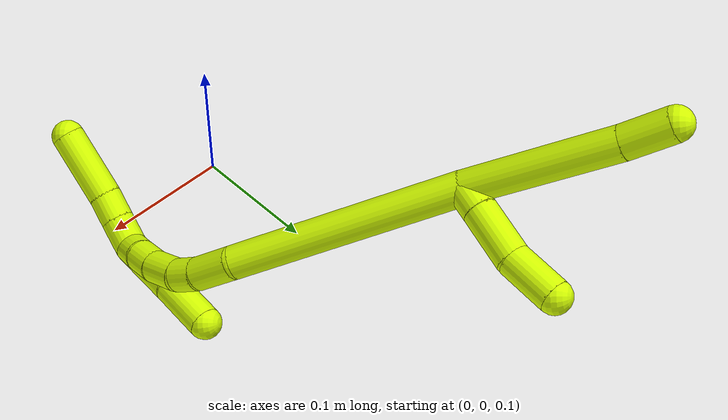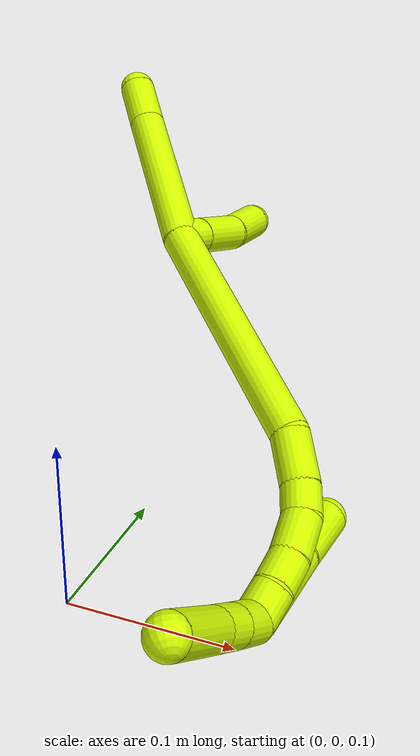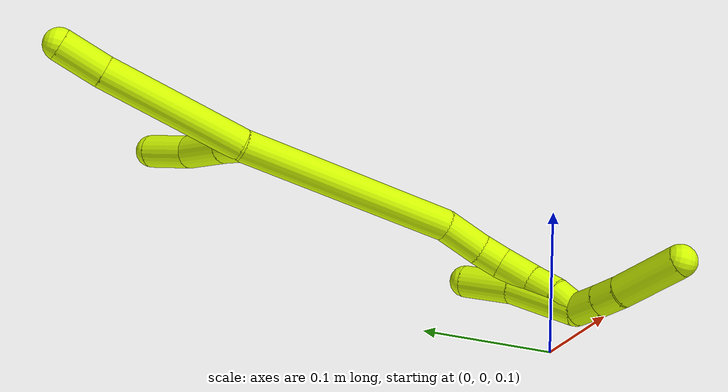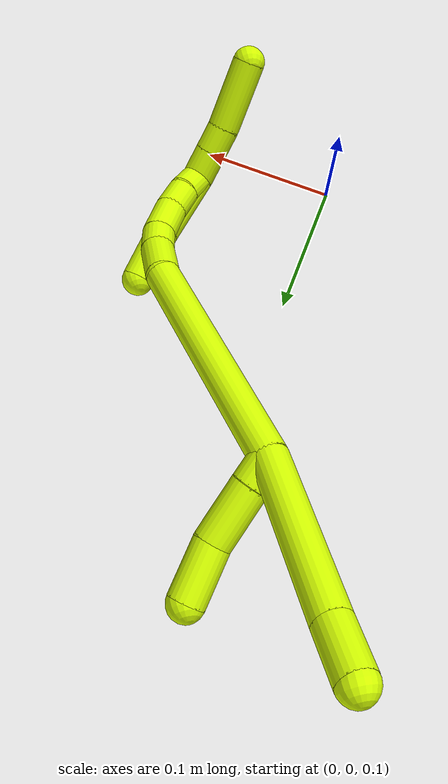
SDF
<sdf version="1.7">
 <world name="default">
  <model name="15">
   <static>0</static>
   <link name="15">
    <collision name="collision-cylinder-e_1_2_8">
     <pose>0.006552 -0.01233 0.055198 0.21977 0.115327 0.012738</pose>
     <geometry><cylinder><radius>0.0125</radius><length>0.113873</length></cylinder></geometry>
     <surface>
      <friction><ode><mu>1.16</mu><mu2>1.16</mu2><slip1>0</slip1><slip2>0</slip2></ode></friction>
      <contact><ode><kp>1e+06</kp><kd>1</kd><max_vel>0</max_vel><min_depth>0.001</min_depth></ode></contact>
     </surface>
    </collision>
    <visual name="visual-cylinder-e_1_2_8">
     <pose>0.006552 -0.01233 0.055198 0.21977 0.115327 0.012738</pose>
     <geometry><cylinder><radius>0.0125</radius><length>0.113873</length></cylinder></geometry>
     <material><ambient>0.835294 1 0 1</ambient></material>
    </visual>
    <collision name="collision-cylinder-e_2_8_6">
     <pose>0.016065 -0.029552 0.12753 0.278095 0.164685 0.023099</pose>
     <geometry><cylinder><radius>0.0125</radius><length>0.036127</length></cylinder></geometry>
     <surface>
      <friction><ode><mu>1.16</mu><mu2>1.16</mu2><slip1>0</slip1><slip2>0</slip2></ode></friction>
      <contact><ode><kp>1e+06</kp><kd>1</kd><max_vel>0</max_vel><min_depth>0.001</min_depth></ode></contact>
     </surface>
    </collision>
    <visual name="visual-cylinder-e_2_8_6">
     <pose>0.016065 -0.029552 0.12753 0.278095 0.164685 0.023099</pose>
     <geometry><cylinder><radius>0.0125</radius><length>0.036127</length></cylinder></geometry>
     <material><ambient>0.835294 1 0 1</ambient></material>
    </visual>
    <collision name="collision-cylinder-e_1_2_9">
     <pose>0.002121 0.008067 0.006134 -0.920677 0.20626 -0.102552</pose>
     <geometry><cylinder><radius>0.0125</radius><length>0.020709</length></cylinder></geometry>
     <surface>
      <friction><ode><mu>1.16</mu><mu2>1.16</mu2><slip1>0</slip1><slip2>0</slip2></ode></friction>
      <contact><ode><kp>1e+06</kp><kd>1</kd><max_vel>0</max_vel><min_depth>0.001</min_depth></ode></contact>
     </surface>
    </collision>
    <visual name="visual-cylinder-e_1_2_9">
     <pose>0.002121 0.008067 0.006134 -0.920677 0.20626 -0.102552</pose>
     <geometry><cylinder><radius>0.0125</radius><length>0.020709</length></cylinder></geometry>
     <material><ambient>0.835294 1 0 1</ambient></material>
    </visual>
    <collision name="collision-cylinder-e_2_9_10">
     <pose>0.007636 0.032501 0.024273 -0.937956 0.165733 -0.084117</pose>
     <geometry><cylinder><radius>0.0125</radius><length>0.041156</length></cylinder></geometry>
     <surface>
      <friction><ode><mu>1.16</mu><mu2>1.16</mu2><slip1>0</slip1><slip2>0</slip2></ode></friction>
      <contact><ode><kp>1e+06</kp><kd>1</kd><max_vel>0</max_vel><min_depth>0.001</min_depth></ode></contact>
     </surface>
    </collision>
    <visual name="visual-cylinder-e_2_9_10">
     <pose>0.007636 0.032501 0.024273 -0.937956 0.165733 -0.084117</pose>
     <geometry><cylinder><radius>0.0125</radius><length>0.041156</length></cylinder></geometry>
     <material><ambient>0.835294 1 0 1</ambient></material>
    </visual>
    <collision name="collision-cylinder-e_3_10_5">
     <pose>0.013924 0.061181 0.050544 -0.712052 0.152312 -0.056735</pose>
     <geometry><cylinder><radius>0.0125</radius><length>0.038135</length></cylinder></geometry>
     <surface>
      <friction><ode><mu>1.16</mu><mu2>1.16</mu2><slip1>0</slip1><slip2>0</slip2></ode></friction>
      <contact><ode><kp>1e+06</kp><kd>1</kd><max_vel>0</max_vel><min_depth>0.001</min_depth></ode></contact>
     </surface>
    </collision>
    <visual name="visual-cylinder-e_3_10_5">
     <pose>0.013924 0.061181 0.050544 -0.712052 0.152312 -0.056735</pose>
     <geometry><cylinder><radius>0.0125</radius><length>0.038135</length></cylinder></geometry>
     <material><ambient>0.835294 1 0 1</ambient></material>
    </visual>
    <collision name="collision-cylinder-e_1_2_11">
     <pose>0.00446 0.024156 -0.083938 -2.86138 0.051014 -0.357937</pose>
     <geometry><cylinder><radius>0.0125</radius><length>0.174917</length></cylinder></geometry>
     <surface>
      <friction><ode><mu>1.16</mu><mu2>1.16</mu2><slip1>0</slip1><slip2>0</slip2></ode></friction>
      <contact><ode><kp>1e+06</kp><kd>1</kd><max_vel>0</max_vel><min_depth>0.001</min_depth></ode></contact>
     </surface>
    </collision>
    <visual name="visual-cylinder-e_1_2_11">
     <pose>0.00446 0.024156 -0.083938 -2.86138 0.051014 -0.357937</pose>
     <geometry><cylinder><radius>0.0125</radius><length>0.174917</length></cylinder></geometry>
     <material><ambient>0.835294 1 0 1</ambient></material>
    </visual>
    <collision name="collision-cylinder-e_2_11_12">
     <pose>0.004837 0.052147 -0.183839 -2.90579 -0.243726 1.60416</pose>
     <geometry><cylinder><radius>0.0125</radius><length>0.033833</length></cylinder></geometry>
     <surface>
      <friction><ode><mu>1.16</mu><mu2>1.16</mu2><slip1>0</slip1><slip2>0</slip2></ode></friction>
      <contact><ode><kp>1e+06</kp><kd>1</kd><max_vel>0</max_vel><min_depth>0.001</min_depth></ode></contact>
     </surface>
    </collision>
    <visual name="visual-cylinder-e_2_11_12">
     <pose>0.004837 0.052147 -0.183839 -2.90579 -0.243726 1.60416</pose>
     <geometry><cylinder><radius>0.0125</radius><length>0.033833</length></cylinder></geometry>
     <material><ambient>0.835294 1 0 1</ambient></material>
    </visual>
    <collision name="collision-cylinder-e_3_12_13">
     <pose>-0.00219 0.056409 -0.209404 -3.09714 -0.297288 2.84686</pose>
     <geometry><cylinder><radius>0.0125</radius><length>0.020107</length></cylinder></geometry>
     <surface>
      <friction><ode><mu>1.16</mu><mu2>1.16</mu2><slip1>0</slip1><slip2>0</slip2></ode></friction>
      <contact><ode><kp>1e+06</kp><kd>1</kd><max_vel>0</max_vel><min_depth>0.001</min_depth></ode></contact>
     </surface>
    </collision>
    <visual name="visual-cylinder-e_3_12_13">
     <pose>-0.00219 0.056409 -0.209404 -3.09714 -0.297288 2.84686</pose>
     <geometry><cylinder><radius>0.0125</radius><length>0.020107</length></cylinder></geometry>
     <material><ambient>0.835294 1 0 1</ambient></material>
    </visual>
    <collision name="collision-cylinder-e_4_13_14">
     <pose>-0.010951 0.053535 -0.23126 2.87845 -0.429751 -2.05143</pose>
     <geometry><cylinder><radius>0.0125</radius><length>0.027919</length></cylinder></geometry>
     <surface>
      <friction><ode><mu>1.16</mu><mu2>1.16</mu2><slip1>0</slip1><slip2>0</slip2></ode></friction>
      <contact><ode><kp>1e+06</kp><kd>1</kd><max_vel>0</max_vel><min_depth>0.001</min_depth></ode></contact>
     </surface>
    </collision>
    <visual name="visual-cylinder-e_4_13_14">
     <pose>-0.010951 0.053535 -0.23126 2.87845 -0.429751 -2.05143</pose>
     <geometry><cylinder><radius>0.0125</radius><length>0.027919</length></cylinder></geometry>
     <material><ambient>0.835294 1 0 1</ambient></material>
    </visual>
    <collision name="collision-cylinder-e_5_14_15">
     <pose>-0.021801 0.045956 -0.25232 2.68936 -0.474917 -1.62151</pose>
     <geometry><cylinder><radius>0.0125</radius><length>0.022017</length></cylinder></geometry>
     <surface>
      <friction><ode><mu>1.16</mu><mu2>1.16</mu2><slip1>0</slip1><slip2>0</slip2></ode></friction>
      <contact><ode><kp>1e+06</kp><kd>1</kd><max_vel>0</max_vel><min_depth>0.001</min_depth></ode></contact>
     </surface>
    </collision>
    <visual name="visual-cylinder-e_5_14_15">
     <pose>-0.021801 0.045956 -0.25232 2.68936 -0.474917 -1.62151</pose>
     <geometry><cylinder><radius>0.0125</radius><length>0.022017</length></cylinder></geometry>
     <material><ambient>0.835294 1 0 1</ambient></material>
    </visual>
    <collision name="collision-cylinder-e_6_15_1">
     <pose>-0.033233 0.038308 -0.268881 2.73159 -0.647693 -2.03242</pose>
     <geometry><cylinder><radius>0.0125</radius><length>0.021207</length></cylinder></geometry>
     <surface>
      <friction><ode><mu>1.16</mu><mu2>1.16</mu2><slip1>0</slip1><slip2>0</slip2></ode></friction>
      <contact><ode><kp>1e+06</kp><kd>1</kd><max_vel>0</max_vel><min_depth>0.001</min_depth></ode></contact>
     </surface>
    </collision>
    <visual name="visual-cylinder-e_6_15_1">
     <pose>-0.033233 0.038308 -0.268881 2.73159 -0.647693 -2.03242</pose>
     <geometry><cylinder><radius>0.0125</radius><length>0.021207</length></cylinder></geometry>
     <material><ambient>0.835294 1 0 1</ambient></material>
    </visual>
    <collision name="collision-cylinder-e_1_1_16">
     <pose>-0.038753 0.024417 -0.28231 2.0654 0.073254 0.122636</pose>
     <geometry><cylinder><radius>0.0125</radius><length>0.02397</length></cylinder></geometry>
     <surface>
      <friction><ode><mu>1.16</mu><mu2>1.16</mu2><slip1>0</slip1><slip2>0</slip2></ode></friction>
      <contact><ode><kp>1e+06</kp><kd>1</kd><max_vel>0</max_vel><min_depth>0.001</min_depth></ode></contact>
     </surface>
    </collision>
    <visual name="visual-cylinder-e_1_1_16">
     <pose>-0.038753 0.024417 -0.28231 2.0654 0.073254 0.122636</pose>
     <geometry><cylinder><radius>0.0125</radius><length>0.02397</length></cylinder></geometry>
     <material><ambient>0.835294 1 0 1</ambient></material>
    </visual>
    <collision name="collision-cylinder-e_2_16_17">
     <pose>-0.036926 0.004442 -0.292893 2.04979 0.088904 0.146185</pose>
     <geometry><cylinder><radius>0.0125</radius><length>0.02139</length></cylinder></geometry>
     <surface>
      <friction><ode><mu>1.16</mu><mu2>1.16</mu2><slip1>0</slip1><slip2>0</slip2></ode></friction>
      <contact><ode><kp>1e+06</kp><kd>1</kd><max_vel>0</max_vel><min_depth>0.001</min_depth></ode></contact>
     </surface>
    </collision>
    <visual name="visual-cylinder-e_2_16_17">
     <pose>-0.036926 0.004442 -0.292893 2.04979 0.088904 0.146185</pose>
     <geometry><cylinder><radius>0.0125</radius><length>0.02139</length></cylinder></geometry>
     <material><ambient>0.835294 1 0 1</ambient></material>
    </visual>
    <collision name="collision-cylinder-e_3_17_4">
     <pose>-0.030525 -0.028348 -0.310921 2.08292 0.200876 0.341173</pose>
     <geometry><cylinder><radius>0.0125</radius><length>0.05464</length></cylinder></geometry>
     <surface>
      <friction><ode><mu>1.16</mu><mu2>1.16</mu2><slip1>0</slip1><slip2>0</slip2></ode></friction>
      <contact><ode><kp>1e+06</kp><kd>1</kd><max_vel>0</max_vel><min_depth>0.001</min_depth></ode></contact>
     </surface>
    </collision>
    <visual name="visual-cylinder-e_3_17_4">
     <pose>-0.030525 -0.028348 -0.310921 2.08292 0.200876 0.341173</pose>
     <geometry><cylinder><radius>0.0125</radius><length>0.05464</length></cylinder></geometry>
     <material><ambient>0.835294 1 0 1</ambient></material>
    </visual>
    <collision name="collision-cylinder-e_1_1_18">
     <pose>-0.029498 0.050064 -0.254534 -0.600187 0.361682 -0.113034</pose>
     <geometry><cylinder><radius>0.0125</radius><length>0.05727</length></cylinder></geometry>
     <surface>
      <friction><ode><mu>1.16</mu><mu2>1.16</mu2><slip1>0</slip1><slip2>0</slip2></ode></friction>
      <contact><ode><kp>1e+06</kp><kd>1</kd><max_vel>0</max_vel><min_depth>0.001</min_depth></ode></contact>
     </surface>
    </collision>
    <visual name="visual-cylinder-e_1_1_18">
     <pose>-0.029498 0.050064 -0.254534 -0.600187 0.361682 -0.113034</pose>
     <geometry><cylinder><radius>0.0125</radius><length>0.05727</length></cylinder></geometry>
     <material><ambient>0.835294 1 0 1</ambient></material>
    </visual>
    <collision name="collision-cylinder-e_2_18_3">
     <pose>-0.01493 0.078361 -0.216205 -0.681768 0.20911 -0.074415</pose>
     <geometry><cylinder><radius>0.0125</radius><length>0.04273</length></cylinder></geometry>
     <surface>
      <friction><ode><mu>1.16</mu><mu2>1.16</mu2><slip1>0</slip1><slip2>0</slip2></ode></friction>
      <contact><ode><kp>1e+06</kp><kd>1</kd><max_vel>0</max_vel><min_depth>0.001</min_depth></ode></contact>
     </surface>
    </collision>
    <visual name="visual-cylinder-e_2_18_3">
     <pose>-0.01493 0.078361 -0.216205 -0.681768 0.20911 -0.074415</pose>
     <geometry><cylinder><radius>0.0125</radius><length>0.04273</length></cylinder></geometry>
     <material><ambient>0.835294 1 0 1</ambient></material>
    </visual>
    <collision name="collision-sphere-3">
     <pose>-0.010495 0.091531 -0.199977 0 -0 0</pose>
     <geometry><sphere><radius>0.0125</radius></sphere></geometry>
     <surface>
      <friction><ode><mu>1.16</mu><mu2>1.16</mu2><slip1>0</slip1><slip2>0</slip2></ode></friction>
      <contact><ode><kp>1e+06</kp><kd>1</kd><max_vel>0</max_vel><min_depth>0.001</min_depth></ode></contact>
     </surface>
    </collision>
    <visual name="visual-sphere-3">
     <pose>-0.010495 0.091531 -0.199977 0 -0 0</pose>
     <geometry><sphere><radius>0.0125</radius></sphere></geometry>
     <material><ambient>0.835294 1 0 1</ambient></material>
    </visual>
    <collision name="collision-sphere-5">
     <pose>0.016817 0.073495 0.064812 0 -0 0</pose>
     <geometry><sphere><radius>0.0125</radius></sphere></geometry>
     <surface>
      <friction><ode><mu>1.16</mu><mu2>1.16</mu2><slip1>0</slip1><slip2>0</slip2></ode></friction>
      <contact><ode><kp>1e+06</kp><kd>1</kd><max_vel>0</max_vel><min_depth>0.001</min_depth></ode></contact>
     </surface>
    </collision>
    <visual name="visual-sphere-5">
     <pose>0.016817 0.073495 0.064812 0 -0 0</pose>
     <geometry><sphere><radius>0.0125</radius></sphere></geometry>
     <material><ambient>0.835294 1 0 1</ambient></material>
    </visual>
    <collision name="collision-sphere-10">
     <pose>0.011031 0.048867 0.036277 0 -0 0</pose>
     <geometry><sphere><radius>0.0125</radius></sphere></geometry>
     <surface>
      <friction><ode><mu>1.16</mu><mu2>1.16</mu2><slip1>0</slip1><slip2>0</slip2></ode></friction>
      <contact><ode><kp>1e+06</kp><kd>1</kd><max_vel>0</max_vel><min_depth>0.001</min_depth></ode></contact>
     </surface>
    </collision>
    <visual name="visual-sphere-10">
     <pose>0.011031 0.048867 0.036277 0 -0 0</pose>
     <geometry><sphere><radius>0.0125</radius></sphere></geometry>
     <material><ambient>0.835294 1 0 1</ambient></material>
    </visual>
    <collision name="collision-sphere-6">
     <pose>0.019026 -0.034444 0.144665 0 -0 0</pose>
     <geometry><sphere><radius>0.0125</radius></sphere></geometry>
     <surface>
      <friction><ode><mu>1.16</mu><mu2>1.16</mu2><slip1>0</slip1><slip2>0</slip2></ode></friction>
      <contact><ode><kp>1e+06</kp><kd>1</kd><max_vel>0</max_vel><min_depth>0.001</min_depth></ode></contact>
     </surface>
    </collision>
    <visual name="visual-sphere-6">
     <pose>0.019026 -0.034444 0.144665 0 -0 0</pose>
     <geometry><sphere><radius>0.0125</radius></sphere></geometry>
     <material><ambient>0.835294 1 0 1</ambient></material>
    </visual>
    <collision name="collision-sphere-9">
     <pose>0.004241 0.016135 0.012269 0 -0 0</pose>
     <geometry><sphere><radius>0.0125</radius></sphere></geometry>
     <surface>
      <friction><ode><mu>1.16</mu><mu2>1.16</mu2><slip1>0</slip1><slip2>0</slip2></ode></friction>
      <contact><ode><kp>1e+06</kp><kd>1</kd><max_vel>0</max_vel><min_depth>0.001</min_depth></ode></contact>
     </surface>
    </collision>
    <visual name="visual-sphere-9">
     <pose>0.004241 0.016135 0.012269 0 -0 0</pose>
     <geometry><sphere><radius>0.0125</radius></sphere></geometry>
     <material><ambient>0.835294 1 0 1</ambient></material>
    </visual>
    <collision name="collision-sphere-2">
     <geometry><sphere><radius>0.0125</radius></sphere></geometry>
     <surface>
      <friction><ode><mu>1.16</mu><mu2>1.16</mu2><slip1>0</slip1><slip2>0</slip2></ode></friction>
      <contact><ode><kp>1e+06</kp><kd>1</kd><max_vel>0</max_vel><min_depth>0.001</min_depth></ode></contact>
     </surface>
    </collision>
    <visual name="visual-sphere-2">
     <geometry><sphere><radius>0.0125</radius></sphere></geometry>
     <material><ambient>0.835294 1 0 1</ambient></material>
    </visual>
    <collision name="collision-sphere-8">
     <pose>0.013103 -0.02466 0.110396 0 -0 0</pose>
     <geometry><sphere><radius>0.0125</radius></sphere></geometry>
     <surface>
      <friction><ode><mu>1.16</mu><mu2>1.16</mu2><slip1>0</slip1><slip2>0</slip2></ode></friction>
      <contact><ode><kp>1e+06</kp><kd>1</kd><max_vel>0</max_vel><min_depth>0.001</min_depth></ode></contact>
     </surface>
    </collision>
    <visual name="visual-sphere-8">
     <pose>0.013103 -0.02466 0.110396 0 -0 0</pose>
     <geometry><sphere><radius>0.0125</radius></sphere></geometry>
     <material><ambient>0.835294 1 0 1</ambient></material>
    </visual>
    <collision name="collision-sphere-11">
     <pose>0.008919 0.048311 -0.167876 0 -0 0</pose>
     <geometry><sphere><radius>0.0125</radius></sphere></geometry>
     <surface>
      <friction><ode><mu>1.16</mu><mu2>1.16</mu2><slip1>0</slip1><slip2>0</slip2></ode></friction>
      <contact><ode><kp>1e+06</kp><kd>1</kd><max_vel>0</max_vel><min_depth>0.001</min_depth></ode></contact>
     </surface>
    </collision>
    <visual name="visual-sphere-11">
     <pose>0.008919 0.048311 -0.167876 0 -0 0</pose>
     <geometry><sphere><radius>0.0125</radius></sphere></geometry>
     <material><ambient>0.835294 1 0 1</ambient></material>
    </visual>
    <collision name="collision-sphere-12">
     <pose>0.000755 0.055982 -0.199801 0 -0 0</pose>
     <geometry><sphere><radius>0.0125</radius></sphere></geometry>
     <surface>
      <friction><ode><mu>1.16</mu><mu2>1.16</mu2><slip1>0</slip1><slip2>0</slip2></ode></friction>
      <contact><ode><kp>1e+06</kp><kd>1</kd><max_vel>0</max_vel><min_depth>0.001</min_depth></ode></contact>
     </surface>
    </collision>
    <visual name="visual-sphere-12">
     <pose>0.000755 0.055982 -0.199801 0 -0 0</pose>
     <geometry><sphere><radius>0.0125</radius></sphere></geometry>
     <material><ambient>0.835294 1 0 1</ambient></material>
    </visual>
    <collision name="collision-sphere-13">
     <pose>-0.005135 0.056836 -0.219007 0 -0 0</pose>
     <geometry><sphere><radius>0.0125</radius></sphere></geometry>
     <surface>
      <friction><ode><mu>1.16</mu><mu2>1.16</mu2><slip1>0</slip1><slip2>0</slip2></ode></friction>
      <contact><ode><kp>1e+06</kp><kd>1</kd><max_vel>0</max_vel><min_depth>0.001</min_depth></ode></contact>
     </surface>
    </collision>
    <visual name="visual-sphere-13">
     <pose>-0.005135 0.056836 -0.219007 0 -0 0</pose>
     <geometry><sphere><radius>0.0125</radius></sphere></geometry>
     <material><ambient>0.835294 1 0 1</ambient></material>
    </visual>
    <collision name="collision-sphere-14">
     <pose>-0.016768 0.050234 -0.243514 0 -0 0</pose>
     <geometry><sphere><radius>0.0125</radius></sphere></geometry>
     <surface>
      <friction><ode><mu>1.16</mu><mu2>1.16</mu2><slip1>0</slip1><slip2>0</slip2></ode></friction>
      <contact><ode><kp>1e+06</kp><kd>1</kd><max_vel>0</max_vel><min_depth>0.001</min_depth></ode></contact>
     </surface>
    </collision>
    <visual name="visual-sphere-14">
     <pose>-0.016768 0.050234 -0.243514 0 -0 0</pose>
     <geometry><sphere><radius>0.0125</radius></sphere></geometry>
     <material><ambient>0.835294 1 0 1</ambient></material>
    </visual>
    <collision name="collision-sphere-15">
     <pose>-0.026835 0.041678 -0.261126 0 -0 0</pose>
     <geometry><sphere><radius>0.0125</radius></sphere></geometry>
     <surface>
      <friction><ode><mu>1.16</mu><mu2>1.16</mu2><slip1>0</slip1><slip2>0</slip2></ode></friction>
      <contact><ode><kp>1e+06</kp><kd>1</kd><max_vel>0</max_vel><min_depth>0.001</min_depth></ode></contact>
     </surface>
    </collision>
    <visual name="visual-sphere-15">
     <pose>-0.026835 0.041678 -0.261126 0 -0 0</pose>
     <geometry><sphere><radius>0.0125</radius></sphere></geometry>
     <material><ambient>0.835294 1 0 1</ambient></material>
    </visual>
    <collision name="collision-sphere-1">
     <pose>-0.03963 0.034937 -0.276636 0 -0 0</pose>
     <geometry><sphere><radius>0.0125</radius></sphere></geometry>
     <surface>
      <friction><ode><mu>1.16</mu><mu2>1.16</mu2><slip1>0</slip1><slip2>0</slip2></ode></friction>
      <contact><ode><kp>1e+06</kp><kd>1</kd><max_vel>0</max_vel><min_depth>0.001</min_depth></ode></contact>
     </surface>
    </collision>
    <visual name="visual-sphere-1">
     <pose>-0.03963 0.034937 -0.276636 0 -0 0</pose>
     <geometry><sphere><radius>0.0125</radius></sphere></geometry>
     <material><ambient>0.835294 1 0 1</ambient></material>
    </visual>
    <collision name="collision-sphere-18">
     <pose>-0.019365 0.06519 -0.232432 0 -0 0</pose>
     <geometry><sphere><radius>0.0125</radius></sphere></geometry>
     <surface>
      <friction><ode><mu>1.16</mu><mu2>1.16</mu2><slip1>0</slip1><slip2>0</slip2></ode></friction>
      <contact><ode><kp>1e+06</kp><kd>1</kd><max_vel>0</max_vel><min_depth>0.001</min_depth></ode></contact>
     </surface>
    </collision>
    <visual name="visual-sphere-18">
     <pose>-0.019365 0.06519 -0.232432 0 -0 0</pose>
     <geometry><sphere><radius>0.0125</radius></sphere></geometry>
     <material><ambient>0.835294 1 0 1</ambient></material>
    </visual>
    <collision name="collision-sphere-16">
     <pose>-0.037876 0.013896 -0.287983 0 -0 0</pose>
     <geometry><sphere><radius>0.0125</radius></sphere></geometry>
     <surface>
      <friction><ode><mu>1.16</mu><mu2>1.16</mu2><slip1>0</slip1><slip2>0</slip2></ode></friction>
      <contact><ode><kp>1e+06</kp><kd>1</kd><max_vel>0</max_vel><min_depth>0.001</min_depth></ode></contact>
     </surface>
    </collision>
    <visual name="visual-sphere-16">
     <pose>-0.037876 0.013896 -0.287983 0 -0 0</pose>
     <geometry><sphere><radius>0.0125</radius></sphere></geometry>
     <material><ambient>0.835294 1 0 1</ambient></material>
    </visual>
    <collision name="collision-sphere-17">
     <pose>-0.035977 -0.005011 -0.297803 0 -0 0</pose>
     <geometry><sphere><radius>0.0125</radius></sphere></geometry>
     <surface>
      <friction><ode><mu>1.16</mu><mu2>1.16</mu2><slip1>0</slip1><slip2>0</slip2></ode></friction>
      <contact><ode><kp>1e+06</kp><kd>1</kd><max_vel>0</max_vel><min_depth>0.001</min_depth></ode></contact>
     </surface>
    </collision>
    <visual name="visual-sphere-17">
     <pose>-0.035977 -0.005011 -0.297803 0 -0 0</pose>
     <geometry><sphere><radius>0.0125</radius></sphere></geometry>
     <material><ambient>0.835294 1 0 1</ambient></material>
    </visual>
    <collision name="collision-sphere-4">
     <pose>-0.025074 -0.051684 -0.32404 0 -0 0</pose>
     <geometry><sphere><radius>0.0125</radius></sphere></geometry>
     <surface>
      <friction><ode><mu>1.16</mu><mu2>1.16</mu2><slip1>0</slip1><slip2>0</slip2></ode></friction>
      <contact><ode><kp>1e+06</kp><kd>1</kd><max_vel>0</max_vel><min_depth>0.001</min_depth></ode></contact>
     </surface>
    </collision>
    <visual name="visual-sphere-4">
     <pose>-0.025074 -0.051684 -0.32404 0 -0 0</pose>
     <geometry><sphere><radius>0.0125</radius></sphere></geometry>
     <material><ambient>0.835294 1 0 1</ambient></material>
    </visual>
    <inertial>
     <pose>-0.005452 0.022874 -0.110289 0 -0 0</pose>
     <mass>0.75</mass>
     <inertia>
      <ixx>0.000458</ixx>
      <ixy>0</ixy>
      <ixz>0</ixz>
      <iyy>-0.000399</iyy>
      <iyz>0</iyz>
      <izz>-0.000155</izz>
     </inertia>
    </inertial>
   </link>
   <pose>-0.033183 0.234409 0.230131 -1.15289 -0.796685 0.262959</pose>
  </model>
 </world>
</sdf>
